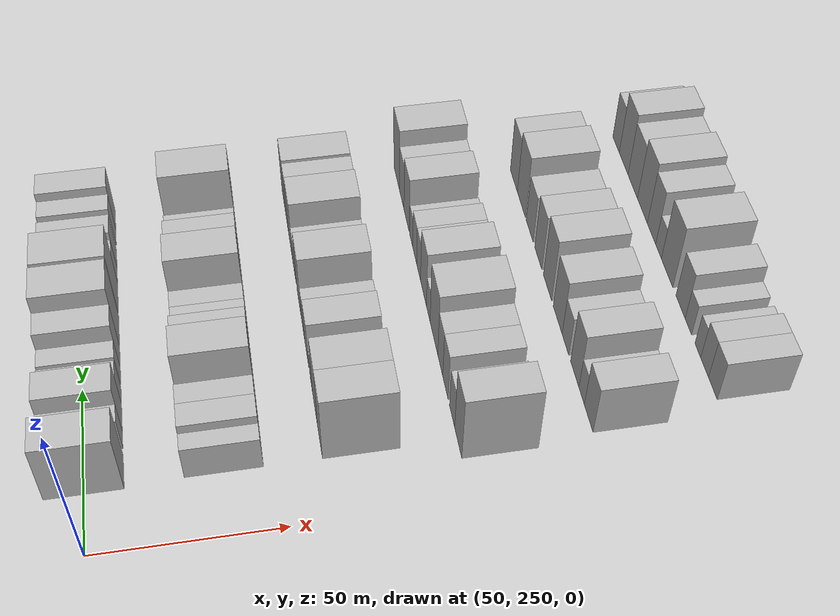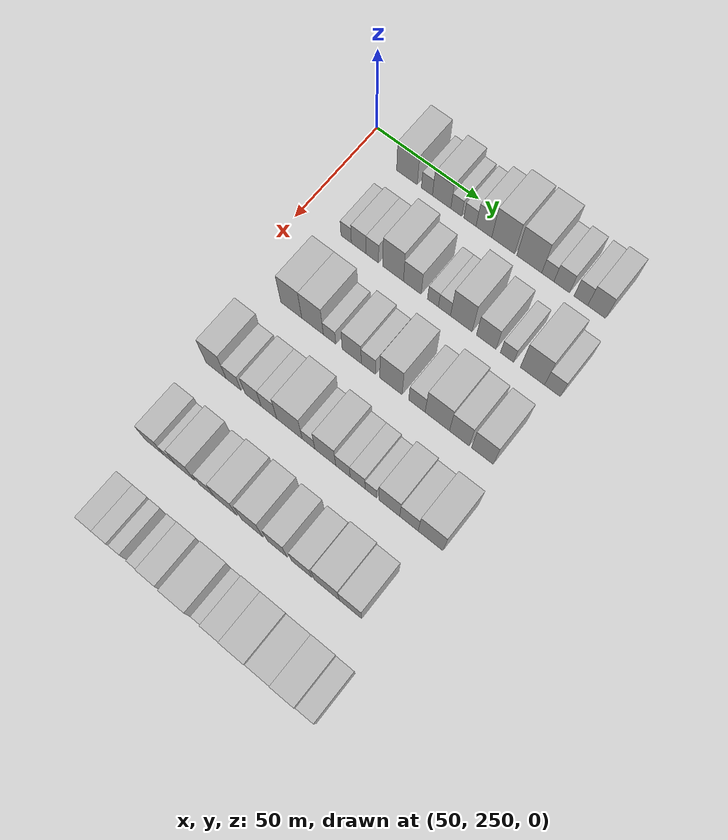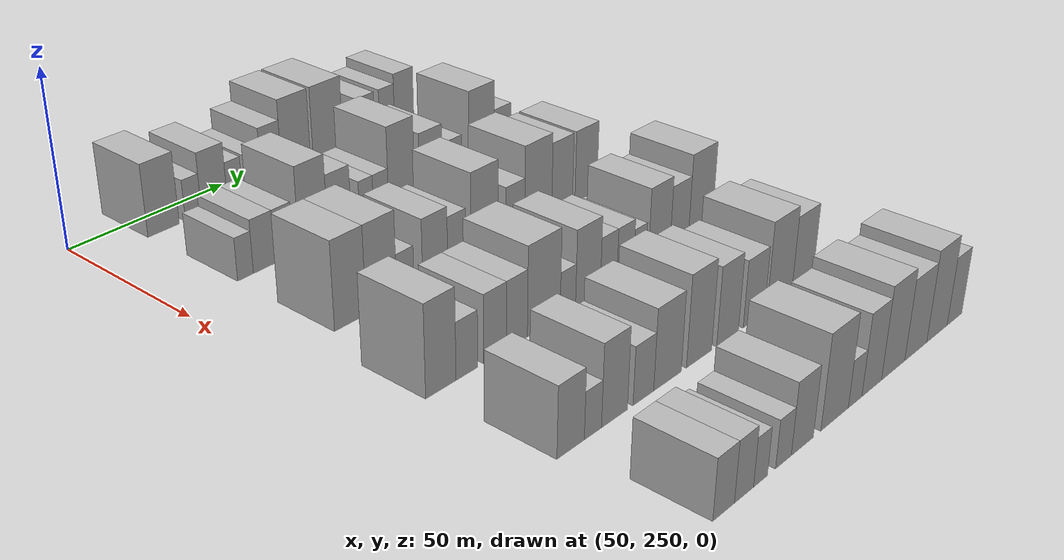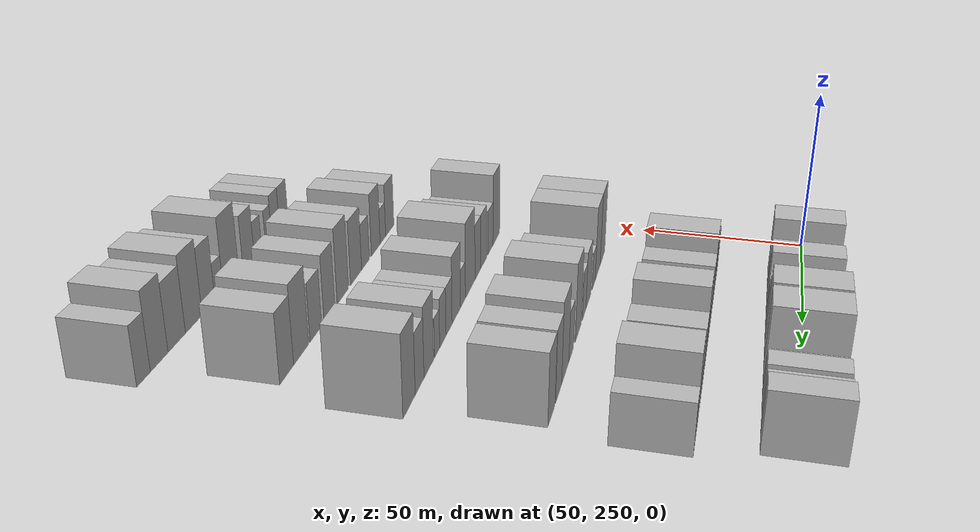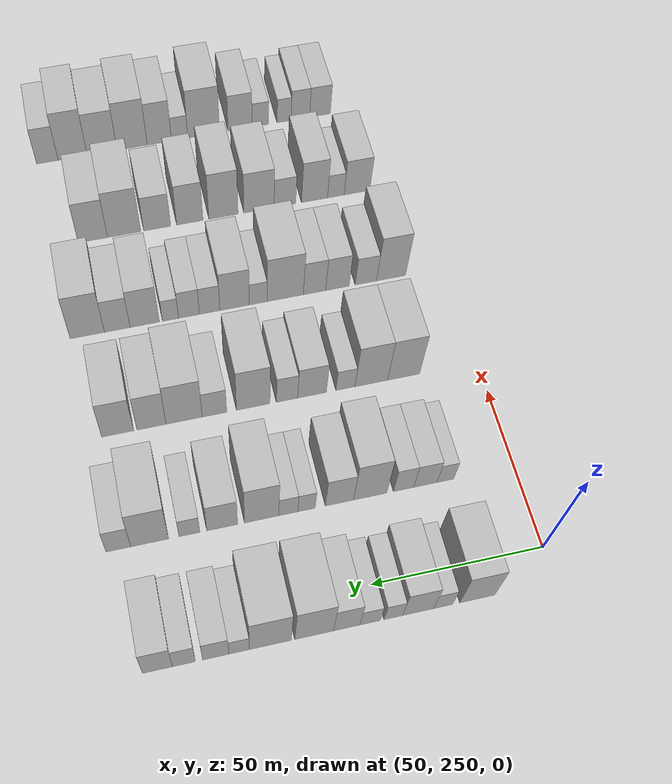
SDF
<sdf version="1.6">
 <world name="default">
  <model name="building_93">
   <static>1</static>
   <pose>50.0000 272.5630 0 0.000000 0.000000 0.000000</pose>
   <link name="link">
    <pose>0 0 10.50 0 0 0</pose>
    <collision name="collision"><geometry><box><size>20.0000 10.1299 21.0000</size></box></geometry></collision>
    <visual name="visual">
     <cast_shadows>0</cast_shadows>
     <geometry><box><size>20.0000 10.1299 21.0000</size></box></geometry>
     <material>
      <script>
       <uri>model://HANNAS_wall/materials/scripts</uri>
       <uri>model://HANNAS_wall/materials/textures</uri>
       <name>vrc/HANNAS_wall</name>
      </script>
     </material>
    </visual>
   </link>
  </model>
  <model name="building_94">
   <static>1</static>
   <pose>50.0000 282.3248 0 0.000000 0.000000 0.000000</pose>
   <link name="link">
    <pose>0 0 6.00 0 0 0</pose>
    <collision name="collision"><geometry><box><size>20.0000 5.3937 12.0000</size></box></geometry></collision>
    <visual name="visual">
     <cast_shadows>0</cast_shadows>
     <geometry><box><size>20.0000 5.3937 12.0000</size></box></geometry>
     <material>
      <script>
       <uri>model://HANNAS_wall/materials/scripts</uri>
       <uri>model://HANNAS_wall/materials/textures</uri>
       <name>vrc/HANNAS_wall</name>
      </script>
     </material>
    </visual>
   </link>
  </model>
  <model name="building_95">
   <static>1</static>
   <pose>50.0000 289.4388 0 0.000000 0.000000 0.000000</pose>
   <link name="link">
    <pose>0 0 9.00 0 0 0</pose>
    <collision name="collision"><geometry><box><size>20.0000 8.8343 18.0000</size></box></geometry></collision>
    <visual name="visual">
     <cast_shadows>0</cast_shadows>
     <geometry><box><size>20.0000 8.8343 18.0000</size></box></geometry>
     <material>
      <script>
       <uri>model://HANNAS_wall/materials/scripts</uri>
       <uri>model://HANNAS_wall/materials/textures</uri>
       <name>vrc/HANNAS_wall</name>
      </script>
     </material>
    </visual>
   </link>
  </model>
  <model name="building_96">
   <static>1</static>
   <pose>50.0000 296.4984 0 0.000000 0.000000 0.000000</pose>
   <link name="link">
    <pose>0 0 6.00 0 0 0</pose>
    <collision name="collision"><geometry><box><size>20.0000 5.2849 12.0000</size></box></geometry></collision>
    <visual name="visual">
     <cast_shadows>0</cast_shadows>
     <geometry><box><size>20.0000 5.2849 12.0000</size></box></geometry>
     <material>
      <script>
       <uri>model://HANNAS_wall/materials/scripts</uri>
       <uri>model://HANNAS_wall/materials/textures</uri>
       <name>vrc/HANNAS_wall</name>
      </script>
     </material>
    </visual>
   </link>
  </model>
  <model name="building_97">
   <static>1</static>
   <pose>50.0000 303.0328 0 0.000000 0.000000 0.000000</pose>
   <link name="link">
    <pose>0 0 6.00 0 0 0</pose>
    <collision name="collision"><geometry><box><size>20.0000 5.7839 12.0000</size></box></geometry></collision>
    <visual name="visual">
     <cast_shadows>0</cast_shadows>
     <geometry><box><size>20.0000 5.7839 12.0000</size></box></geometry>
     <material>
      <script>
       <uri>model://HANNAS_wall/materials/scripts</uri>
       <uri>model://HANNAS_wall/materials/textures</uri>
       <name>vrc/HANNAS_wall</name>
      </script>
     </material>
    </visual>
   </link>
  </model>
  <model name="building_98">
   <static>1</static>
   <pose>50.0000 309.6327 0 0.000000 0.000000 0.000000</pose>
   <link name="link">
    <pose>0 0 9.00 0 0 0</pose>
    <collision name="collision"><geometry><box><size>20.0000 7.4158 18.0000</size></box></geometry></collision>
    <visual name="visual">
     <cast_shadows>0</cast_shadows>
     <geometry><box><size>20.0000 7.4158 18.0000</size></box></geometry>
     <material>
      <script>
       <uri>model://HANNAS_wall/materials/scripts</uri>
       <uri>model://HANNAS_wall/materials/textures</uri>
       <name>vrc/HANNAS_wall</name>
      </script>
     </material>
    </visual>
   </link>
  </model>
  <model name="building_99">
   <static>1</static>
   <pose>50.0000 318.7072 0 0.000000 0.000000 0.000000</pose>
   <link name="link">
    <pose>0 0 12.00 0 0 0</pose>
    <collision name="collision"><geometry><box><size>20.0000 10.7334 24.0000</size></box></geometry></collision>
    <visual name="visual">
     <cast_shadows>0</cast_shadows>
     <geometry><box><size>20.0000 10.7334 24.0000</size></box></geometry>
     <material>
      <script>
       <uri>model://HANNAS_wall/materials/scripts</uri>
       <uri>model://HANNAS_wall/materials/textures</uri>
       <name>vrc/HANNAS_wall</name>
      </script>
     </material>
    </visual>
   </link>
  </model>
  <model name="building_100">
   <static>1</static>
   <pose>50.0000 330.8451 0 0.000000 0.000000 0.000000</pose>
   <link name="link">
    <pose>0 0 12.00 0 0 0</pose>
    <collision name="collision"><geometry><box><size>20.0000 11.5424 24.0000</size></box></geometry></collision>
    <visual name="visual">
     <cast_shadows>0</cast_shadows>
     <geometry><box><size>20.0000 11.5424 24.0000</size></box></geometry>
     <material>
      <script>
       <uri>model://HANNAS_wall/materials/scripts</uri>
       <uri>model://HANNAS_wall/materials/textures</uri>
       <name>vrc/HANNAS_wall</name>
      </script>
     </material>
    </visual>
   </link>
  </model>
  <model name="building_101">
   <static>1</static>
   <pose>50.0000 339.4170 0 0.000000 0.000000 0.000000</pose>
   <link name="link">
    <pose>0 0 6.00 0 0 0</pose>
    <collision name="collision"><geometry><box><size>20.0000 5.6013 12.0000</size></box></geometry></collision>
    <visual name="visual">
     <cast_shadows>0</cast_shadows>
     <geometry><box><size>20.0000 5.6013 12.0000</size></box></geometry>
     <material>
      <script>
       <uri>model://HANNAS_wall/materials/scripts</uri>
       <uri>model://HANNAS_wall/materials/textures</uri>
       <name>vrc/HANNAS_wall</name>
      </script>
     </material>
    </visual>
   </link>
  </model>
  <model name="building_102">
   <static>1</static>
   <pose>50.0000 345.7855 0 0.000000 0.000000 0.000000</pose>
   <link name="link">
    <pose>0 0 7.50 0 0 0</pose>
    <collision name="collision"><geometry><box><size>20.0000 7.1358 15.0000</size></box></geometry></collision>
    <visual name="visual">
     <cast_shadows>0</cast_shadows>
     <geometry><box><size>20.0000 7.1358 15.0000</size></box></geometry>
     <material>
      <script>
       <uri>model://HANNAS_wall/materials/scripts</uri>
       <uri>model://HANNAS_wall/materials/textures</uri>
       <name>vrc/HANNAS_wall</name>
      </script>
     </material>
    </visual>
   </link>
  </model>
  <model name="building_103">
   <static>1</static>
   <pose>50.0000 354.4414 0 0.000000 0.000000 0.000000</pose>
   <link name="link">
    <pose>0 0 7.50 0 0 0</pose>
    <collision name="collision"><geometry><box><size>20.0000 6.1759 15.0000</size></box></geometry></collision>
    <visual name="visual">
     <cast_shadows>0</cast_shadows>
     <geometry><box><size>20.0000 6.1759 15.0000</size></box></geometry>
     <material>
      <script>
       <uri>model://HANNAS_wall/materials/scripts</uri>
       <uri>model://HANNAS_wall/materials/textures</uri>
       <name>vrc/HANNAS_wall</name>
      </script>
     </material>
    </visual>
   </link>
  </model>
  <model name="building_104">
   <static>1</static>
   <pose>50.0000 361.5789 0 0.000000 0.000000 0.000000</pose>
   <link name="link">
    <pose>0 0 9.00 0 0 0</pose>
    <collision name="collision"><geometry><box><size>20.0000 8.0990 18.0000</size></box></geometry></collision>
    <visual name="visual">
     <cast_shadows>0</cast_shadows>
     <geometry><box><size>20.0000 8.0990 18.0000</size></box></geometry>
     <material>
      <script>
       <uri>model://HANNAS_wall/materials/scripts</uri>
       <uri>model://HANNAS_wall/materials/textures</uri>
       <name>vrc/HANNAS_wall</name>
      </script>
     </material>
    </visual>
   </link>
  </model>
  <model name="building_218">
   <static>1</static>
   <pose>85.0000 270.9491 0 0.000000 0.000000 0.000000</pose>
   <link name="link">
    <pose>0 0 6.00 0 0 0</pose>
    <collision name="collision"><geometry><box><size>20.0000 5.0546 12.0000</size></box></geometry></collision>
    <visual name="visual">
     <cast_shadows>0</cast_shadows>
     <geometry><box><size>20.0000 5.0546 12.0000</size></box></geometry>
     <material>
      <script>
       <uri>model://HANNAS_wall/materials/scripts</uri>
       <uri>model://HANNAS_wall/materials/textures</uri>
       <name>vrc/HANNAS_wall</name>
      </script>
     </material>
    </visual>
   </link>
  </model>
  <model name="building_219">
   <static>1</static>
   <pose>85.0000 276.9912 0 0.000000 0.000000 0.000000</pose>
   <link name="link">
    <pose>0 0 7.50 0 0 0</pose>
    <collision name="collision"><geometry><box><size>20.0000 7.0296 15.0000</size></box></geometry></collision>
    <visual name="visual">
     <cast_shadows>0</cast_shadows>
     <geometry><box><size>20.0000 7.0296 15.0000</size></box></geometry>
     <material>
      <script>
       <uri>model://HANNAS_wall/materials/scripts</uri>
       <uri>model://HANNAS_wall/materials/textures</uri>
       <name>vrc/HANNAS_wall</name>
      </script>
     </material>
    </visual>
   </link>
  </model>
  <model name="building_220">
   <static>1</static>
   <pose>85.0000 283.5441 0 0.000000 0.000000 0.000000</pose>
   <link name="link">
    <pose>0 0 7.50 0 0 0</pose>
    <collision name="collision"><geometry><box><size>20.0000 6.0762 15.0000</size></box></geometry></collision>
    <visual name="visual">
     <cast_shadows>0</cast_shadows>
     <geometry><box><size>20.0000 6.0762 15.0000</size></box></geometry>
     <material>
      <script>
       <uri>model://HANNAS_wall/materials/scripts</uri>
       <uri>model://HANNAS_wall/materials/textures</uri>
       <name>vrc/HANNAS_wall</name>
      </script>
     </material>
    </visual>
   </link>
  </model>
  <model name="building_221">
   <static>1</static>
   <pose>85.0000 293.5331 0 0.000000 0.000000 0.000000</pose>
   <link name="link">
    <pose>0 0 12.00 0 0 0</pose>
    <collision name="collision"><geometry><box><size>20.0000 9.9017 24.0000</size></box></geometry></collision>
    <visual name="visual">
     <cast_shadows>0</cast_shadows>
     <geometry><box><size>20.0000 9.9017 24.0000</size></box></geometry>
     <material>
      <script>
       <uri>model://HANNAS_wall/materials/scripts</uri>
       <uri>model://HANNAS_wall/materials/textures</uri>
       <name>vrc/HANNAS_wall</name>
      </script>
     </material>
    </visual>
   </link>
  </model>
  <model name="building_222">
   <static>1</static>
   <pose>85.0000 302.6558 0 0.000000 0.000000 0.000000</pose>
   <link name="link">
    <pose>0 0 9.00 0 0 0</pose>
    <collision name="collision"><geometry><box><size>20.0000 8.3438 18.0000</size></box></geometry></collision>
    <visual name="visual">
     <cast_shadows>0</cast_shadows>
     <geometry><box><size>20.0000 8.3438 18.0000</size></box></geometry>
     <material>
      <script>
       <uri>model://HANNAS_wall/materials/scripts</uri>
       <uri>model://HANNAS_wall/materials/textures</uri>
       <name>vrc/HANNAS_wall</name>
      </script>
     </material>
    </visual>
   </link>
  </model>
  <model name="building_223">
   <static>1</static>
   <pose>85.0000 312.3709 0 0.000000 0.000000 0.000000</pose>
   <link name="link">
    <pose>0 0 6.00 0 0 0</pose>
    <collision name="collision"><geometry><box><size>20.0000 5.0863 12.0000</size></box></geometry></collision>
    <visual name="visual">
     <cast_shadows>0</cast_shadows>
     <geometry><box><size>20.0000 5.0863 12.0000</size></box></geometry>
     <material>
      <script>
       <uri>model://HANNAS_wall/materials/scripts</uri>
       <uri>model://HANNAS_wall/materials/textures</uri>
       <name>vrc/HANNAS_wall</name>
      </script>
     </material>
    </visual>
   </link>
  </model>
  <model name="building_224">
   <static>1</static>
   <pose>85.0000 317.7336 0 0.000000 0.000000 0.000000</pose>
   <link name="link">
    <pose>0 0 6.00 0 0 0</pose>
    <collision name="collision"><geometry><box><size>20.0000 5.6390 12.0000</size></box></geometry></collision>
    <visual name="visual">
     <cast_shadows>0</cast_shadows>
     <geometry><box><size>20.0000 5.6390 12.0000</size></box></geometry>
     <material>
      <script>
       <uri>model://HANNAS_wall/materials/scripts</uri>
       <uri>model://HANNAS_wall/materials/textures</uri>
       <name>vrc/HANNAS_wall</name>
      </script>
     </material>
    </visual>
   </link>
  </model>
  <model name="building_225">
   <static>1</static>
   <pose>85.0000 325.5267 0 0.000000 0.000000 0.000000</pose>
   <link name="link">
    <pose>0 0 12.00 0 0 0</pose>
    <collision name="collision"><geometry><box><size>20.0000 9.9472 24.0000</size></box></geometry></collision>
    <visual name="visual">
     <cast_shadows>0</cast_shadows>
     <geometry><box><size>20.0000 9.9472 24.0000</size></box></geometry>
     <material>
      <script>
       <uri>model://HANNAS_wall/materials/scripts</uri>
       <uri>model://HANNAS_wall/materials/textures</uri>
       <name>vrc/HANNAS_wall</name>
      </script>
     </material>
    </visual>
   </link>
  </model>
  <model name="building_226">
   <static>1</static>
   <pose>85.0000 336.9498 0 0.000000 0.000000 0.000000</pose>
   <link name="link">
    <pose>0 0 9.00 0 0 0</pose>
    <collision name="collision"><geometry><box><size>20.0000 8.8991 18.0000</size></box></geometry></collision>
    <visual name="visual">
     <cast_shadows>0</cast_shadows>
     <geometry><box><size>20.0000 8.8991 18.0000</size></box></geometry>
     <material>
      <script>
       <uri>model://HANNAS_wall/materials/scripts</uri>
       <uri>model://HANNAS_wall/materials/textures</uri>
       <name>vrc/HANNAS_wall</name>
      </script>
     </material>
    </visual>
   </link>
  </model>
  <model name="building_227">
   <static>1</static>
   <pose>85.0000 346.3921 0 0.000000 0.000000 0.000000</pose>
   <link name="link">
    <pose>0 0 6.00 0 0 0</pose>
    <collision name="collision"><geometry><box><size>20.0000 5.9854 12.0000</size></box></geometry></collision>
    <visual name="visual">
     <cast_shadows>0</cast_shadows>
     <geometry><box><size>20.0000 5.9854 12.0000</size></box></geometry>
     <material>
      <script>
       <uri>model://HANNAS_wall/materials/scripts</uri>
       <uri>model://HANNAS_wall/materials/textures</uri>
       <name>vrc/HANNAS_wall</name>
      </script>
     </material>
    </visual>
   </link>
  </model>
  <model name="building_228">
   <static>1</static>
   <pose>85.0000 357.7683 0 0.000000 0.000000 0.000000</pose>
   <link name="link">
    <pose>0 0 12.00 0 0 0</pose>
    <collision name="collision"><geometry><box><size>20.0000 10.7670 24.0000</size></box></geometry></collision>
    <visual name="visual">
     <cast_shadows>0</cast_shadows>
     <geometry><box><size>20.0000 10.7670 24.0000</size></box></geometry>
     <material>
      <script>
       <uri>model://HANNAS_wall/materials/scripts</uri>
       <uri>model://HANNAS_wall/materials/textures</uri>
       <name>vrc/HANNAS_wall</name>
      </script>
     </material>
    </visual>
   </link>
  </model>
  <model name="building_229">
   <static>1</static>
   <pose>85.0000 366.6592 0 0.000000 0.000000 0.000000</pose>
   <link name="link">
    <pose>0 0 7.50 0 0 0</pose>
    <collision name="collision"><geometry><box><size>20.0000 7.0147 15.0000</size></box></geometry></collision>
    <visual name="visual">
     <cast_shadows>0</cast_shadows>
     <geometry><box><size>20.0000 7.0147 15.0000</size></box></geometry>
     <material>
      <script>
       <uri>model://HANNAS_wall/materials/scripts</uri>
       <uri>model://HANNAS_wall/materials/textures</uri>
       <name>vrc/HANNAS_wall</name>
      </script>
     </material>
    </visual>
   </link>
  </model>
  <model name="building_349">
   <static>1</static>
   <pose>120.0000 273.4617 0 0.000000 0.000000 0.000000</pose>
   <link name="link">
    <pose>0 0 12.00 0 0 0</pose>
    <collision name="collision"><geometry><box><size>20.0000 10.1039 24.0000</size></box></geometry></collision>
    <visual name="visual">
     <cast_shadows>0</cast_shadows>
     <geometry><box><size>20.0000 10.1039 24.0000</size></box></geometry>
     <material>
      <script>
       <uri>model://HANNAS_wall/materials/scripts</uri>
       <uri>model://HANNAS_wall/materials/textures</uri>
       <name>vrc/HANNAS_wall</name>
      </script>
     </material>
    </visual>
   </link>
  </model>
  <model name="building_350">
   <static>1</static>
   <pose>120.0000 283.6607 0 0.000000 0.000000 0.000000</pose>
   <link name="link">
    <pose>0 0 12.00 0 0 0</pose>
    <collision name="collision"><geometry><box><size>20.0000 10.2941 24.0000</size></box></geometry></collision>
    <visual name="visual">
     <cast_shadows>0</cast_shadows>
     <geometry><box><size>20.0000 10.2941 24.0000</size></box></geometry>
     <material>
      <script>
       <uri>model://HANNAS_wall/materials/scripts</uri>
       <uri>model://HANNAS_wall/materials/textures</uri>
       <name>vrc/HANNAS_wall</name>
      </script>
     </material>
    </visual>
   </link>
  </model>
  <model name="building_351">
   <static>1</static>
   <pose>120.0000 291.7783 0 0.000000 0.000000 0.000000</pose>
   <link name="link">
    <pose>0 0 6.00 0 0 0</pose>
    <collision name="collision"><geometry><box><size>20.0000 5.9409 12.0000</size></box></geometry></collision>
    <visual name="visual">
     <cast_shadows>0</cast_shadows>
     <geometry><box><size>20.0000 5.9409 12.0000</size></box></geometry>
     <material>
      <script>
       <uri>model://HANNAS_wall/materials/scripts</uri>
       <uri>model://HANNAS_wall/materials/textures</uri>
       <name>vrc/HANNAS_wall</name>
      </script>
     </material>
    </visual>
   </link>
  </model>
  <model name="building_352">
   <static>1</static>
   <pose>120.0000 302.2097 0 0.000000 0.000000 0.000000</pose>
   <link name="link">
    <pose>0 0 9.00 0 0 0</pose>
    <collision name="collision"><geometry><box><size>20.0000 8.9220 18.0000</size></box></geometry></collision>
    <visual name="visual">
     <cast_shadows>0</cast_shadows>
     <geometry><box><size>20.0000 8.9220 18.0000</size></box></geometry>
     <material>
      <script>
       <uri>model://HANNAS_wall/materials/scripts</uri>
       <uri>model://HANNAS_wall/materials/textures</uri>
       <name>vrc/HANNAS_wall</name>
      </script>
     </material>
    </visual>
   </link>
  </model>
  <model name="building_353">
   <static>1</static>
   <pose>120.0000 309.9529 0 0.000000 0.000000 0.000000</pose>
   <link name="link">
    <pose>0 0 7.50 0 0 0</pose>
    <collision name="collision"><geometry><box><size>20.0000 6.5644 15.0000</size></box></geometry></collision>
    <visual name="visual">
     <cast_shadows>0</cast_shadows>
     <geometry><box><size>20.0000 6.5644 15.0000</size></box></geometry>
     <material>
      <script>
       <uri>model://HANNAS_wall/materials/scripts</uri>
       <uri>model://HANNAS_wall/materials/textures</uri>
       <name>vrc/HANNAS_wall</name>
      </script>
     </material>
    </visual>
   </link>
  </model>
  <model name="building_354">
   <static>1</static>
   <pose>120.0000 320.3714 0 0.000000 0.000000 0.000000</pose>
   <link name="link">
    <pose>0 0 12.00 0 0 0</pose>
    <collision name="collision"><geometry><box><size>20.0000 10.2726 24.0000</size></box></geometry></collision>
    <visual name="visual">
     <cast_shadows>0</cast_shadows>
     <geometry><box><size>20.0000 10.2726 24.0000</size></box></geometry>
     <material>
      <script>
       <uri>model://HANNAS_wall/materials/scripts</uri>
       <uri>model://HANNAS_wall/materials/textures</uri>
       <name>vrc/HANNAS_wall</name>
      </script>
     </material>
    </visual>
   </link>
  </model>
  <model name="building_355">
   <static>1</static>
   <pose>120.0000 332.2340 0 0.000000 0.000000 0.000000</pose>
   <link name="link">
    <pose>0 0 7.50 0 0 0</pose>
    <collision name="collision"><geometry><box><size>20.0000 7.4526 15.0000</size></box></geometry></collision>
    <visual name="visual">
     <cast_shadows>0</cast_shadows>
     <geometry><box><size>20.0000 7.4526 15.0000</size></box></geometry>
     <material>
      <script>
       <uri>model://HANNAS_wall/materials/scripts</uri>
       <uri>model://HANNAS_wall/materials/textures</uri>
       <name>vrc/HANNAS_wall</name>
      </script>
     </material>
    </visual>
   </link>
  </model>
  <model name="building_356">
   <static>1</static>
   <pose>120.0000 341.4421 0 0.000000 0.000000 0.000000</pose>
   <link name="link">
    <pose>0 0 12.00 0 0 0</pose>
    <collision name="collision"><geometry><box><size>20.0000 10.9636 24.0000</size></box></geometry></collision>
    <visual name="visual">
     <cast_shadows>0</cast_shadows>
     <geometry><box><size>20.0000 10.9636 24.0000</size></box></geometry>
     <material>
      <script>
       <uri>model://HANNAS_wall/materials/scripts</uri>
       <uri>model://HANNAS_wall/materials/textures</uri>
       <name>vrc/HANNAS_wall</name>
      </script>
     </material>
    </visual>
   </link>
  </model>
  <model name="building_357">
   <static>1</static>
   <pose>120.0000 351.2970 0 0.000000 0.000000 0.000000</pose>
   <link name="link">
    <pose>0 0 10.50 0 0 0</pose>
    <collision name="collision"><geometry><box><size>20.0000 8.7463 21.0000</size></box></geometry></collision>
    <visual name="visual">
     <cast_shadows>0</cast_shadows>
     <geometry><box><size>20.0000 8.7463 21.0000</size></box></geometry>
     <material>
      <script>
       <uri>model://HANNAS_wall/materials/scripts</uri>
       <uri>model://HANNAS_wall/materials/textures</uri>
       <name>vrc/HANNAS_wall</name>
      </script>
     </material>
    </visual>
   </link>
  </model>
  <model name="building_358">
   <static>1</static>
   <pose>120.0000 361.4625 0 0.000000 0.000000 0.000000</pose>
   <link name="link">
    <pose>0 0 10.50 0 0 0</pose>
    <collision name="collision"><geometry><box><size>20.0000 9.5847 21.0000</size></box></geometry></collision>
    <visual name="visual">
     <cast_shadows>0</cast_shadows>
     <geometry><box><size>20.0000 9.5847 21.0000</size></box></geometry>
     <material>
      <script>
       <uri>model://HANNAS_wall/materials/scripts</uri>
       <uri>model://HANNAS_wall/materials/textures</uri>
       <name>vrc/HANNAS_wall</name>
      </script>
     </material>
    </visual>
   </link>
  </model>
  <model name="building_475">
   <static>1</static>
   <pose>155.0000 267.5952 0 0.000000 0.000000 0.000000</pose>
   <link name="link">
    <pose>0 0 12.00 0 0 0</pose>
    <collision name="collision"><geometry><box><size>20.0000 9.6305 24.0000</size></box></geometry></collision>
    <visual name="visual">
     <cast_shadows>0</cast_shadows>
     <geometry><box><size>20.0000 9.6305 24.0000</size></box></geometry>
     <material>
      <script>
       <uri>model://HANNAS_wall/materials/scripts</uri>
       <uri>model://HANNAS_wall/materials/textures</uri>
       <name>vrc/HANNAS_wall</name>
      </script>
     </material>
    </visual>
   </link>
  </model>
  <model name="building_476">
   <static>1</static>
   <pose>155.0000 275.9416 0 0.000000 0.000000 0.000000</pose>
   <link name="link">
    <pose>0 0 7.50 0 0 0</pose>
    <collision name="collision"><geometry><box><size>20.0000 7.0623 15.0000</size></box></geometry></collision>
    <visual name="visual">
     <cast_shadows>0</cast_shadows>
     <geometry><box><size>20.0000 7.0623 15.0000</size></box></geometry>
     <material>
      <script>
       <uri>model://HANNAS_wall/materials/scripts</uri>
       <uri>model://HANNAS_wall/materials/textures</uri>
       <name>vrc/HANNAS_wall</name>
      </script>
     </material>
    </visual>
   </link>
  </model>
  <model name="building_477">
   <static>1</static>
   <pose>155.0000 285.3230 0 0.000000 0.000000 0.000000</pose>
   <link name="link">
    <pose>0 0 9.00 0 0 0</pose>
    <collision name="collision"><geometry><box><size>20.0000 7.7006 18.0000</size></box></geometry></collision>
    <visual name="visual">
     <cast_shadows>0</cast_shadows>
     <geometry><box><size>20.0000 7.7006 18.0000</size></box></geometry>
     <material>
      <script>
       <uri>model://HANNAS_wall/materials/scripts</uri>
       <uri>model://HANNAS_wall/materials/textures</uri>
       <name>vrc/HANNAS_wall</name>
      </script>
     </material>
    </visual>
   </link>
  </model>
  <model name="building_478">
   <static>1</static>
   <pose>155.0000 292.8248 0 0.000000 0.000000 0.000000</pose>
   <link name="link">
    <pose>0 0 9.00 0 0 0</pose>
    <collision name="collision"><geometry><box><size>20.0000 7.3030 18.0000</size></box></geometry></collision>
    <visual name="visual">
     <cast_shadows>0</cast_shadows>
     <geometry><box><size>20.0000 7.3030 18.0000</size></box></geometry>
     <material>
      <script>
       <uri>model://HANNAS_wall/materials/scripts</uri>
       <uri>model://HANNAS_wall/materials/textures</uri>
       <name>vrc/HANNAS_wall</name>
      </script>
     </material>
    </visual>
   </link>
  </model>
  <model name="building_479">
   <static>1</static>
   <pose>155.0000 302.3941 0 0.000000 0.000000 0.000000</pose>
   <link name="link">
    <pose>0 0 12.00 0 0 0</pose>
    <collision name="collision"><geometry><box><size>20.0000 11.8357 24.0000</size></box></geometry></collision>
    <visual name="visual">
     <cast_shadows>0</cast_shadows>
     <geometry><box><size>20.0000 11.8357 24.0000</size></box></geometry>
     <material>
      <script>
       <uri>model://HANNAS_wall/materials/scripts</uri>
       <uri>model://HANNAS_wall/materials/textures</uri>
       <name>vrc/HANNAS_wall</name>
      </script>
     </material>
    </visual>
   </link>
  </model>
  <model name="building_480">
   <static>1</static>
   <pose>155.0000 311.1823 0 0.000000 0.000000 0.000000</pose>
   <link name="link">
    <pose>0 0 6.00 0 0 0</pose>
    <collision name="collision"><geometry><box><size>20.0000 5.7406 12.0000</size></box></geometry></collision>
    <visual name="visual">
     <cast_shadows>0</cast_shadows>
     <geometry><box><size>20.0000 5.7406 12.0000</size></box></geometry>
     <material>
      <script>
       <uri>model://HANNAS_wall/materials/scripts</uri>
       <uri>model://HANNAS_wall/materials/textures</uri>
       <name>vrc/HANNAS_wall</name>
      </script>
     </material>
    </visual>
   </link>
  </model>
  <model name="building_481">
   <static>1</static>
   <pose>155.0000 318.7968 0 0.000000 0.000000 0.000000</pose>
   <link name="link">
    <pose>0 0 10.50 0 0 0</pose>
    <collision name="collision"><geometry><box><size>20.0000 9.4885 21.0000</size></box></geometry></collision>
    <visual name="visual">
     <cast_shadows>0</cast_shadows>
     <geometry><box><size>20.0000 9.4885 21.0000</size></box></geometry>
     <material>
      <script>
       <uri>model://HANNAS_wall/materials/scripts</uri>
       <uri>model://HANNAS_wall/materials/textures</uri>
       <name>vrc/HANNAS_wall</name>
      </script>
     </material>
    </visual>
   </link>
  </model>
  <model name="building_482">
   <static>1</static>
   <pose>155.0000 326.8079 0 0.000000 0.000000 0.000000</pose>
   <link name="link">
    <pose>0 0 7.50 0 0 0</pose>
    <collision name="collision"><geometry><box><size>20.0000 6.5336 15.0000</size></box></geometry></collision>
    <visual name="visual">
     <cast_shadows>0</cast_shadows>
     <geometry><box><size>20.0000 6.5336 15.0000</size></box></geometry>
     <material>
      <script>
       <uri>model://HANNAS_wall/materials/scripts</uri>
       <uri>model://HANNAS_wall/materials/textures</uri>
       <name>vrc/HANNAS_wall</name>
      </script>
     </material>
    </visual>
   </link>
  </model>
  <model name="building_483">
   <static>1</static>
   <pose>155.0000 333.4215 0 0.000000 0.000000 0.000000</pose>
   <link name="link">
    <pose>0 0 7.50 0 0 0</pose>
    <collision name="collision"><geometry><box><size>20.0000 6.6936 15.0000</size></box></geometry></collision>
    <visual name="visual">
     <cast_shadows>0</cast_shadows>
     <geometry><box><size>20.0000 6.6936 15.0000</size></box></geometry>
     <material>
      <script>
       <uri>model://HANNAS_wall/materials/scripts</uri>
       <uri>model://HANNAS_wall/materials/textures</uri>
       <name>vrc/HANNAS_wall</name>
      </script>
     </material>
    </visual>
   </link>
  </model>
  <model name="building_484">
   <static>1</static>
   <pose>155.0000 339.3226 0 0.000000 0.000000 0.000000</pose>
   <link name="link">
    <pose>0 0 6.00 0 0 0</pose>
    <collision name="collision"><geometry><box><size>20.0000 5.1086 12.0000</size></box></geometry></collision>
    <visual name="visual">
     <cast_shadows>0</cast_shadows>
     <geometry><box><size>20.0000 5.1086 12.0000</size></box></geometry>
     <material>
      <script>
       <uri>model://HANNAS_wall/materials/scripts</uri>
       <uri>model://HANNAS_wall/materials/textures</uri>
       <name>vrc/HANNAS_wall</name>
      </script>
     </material>
    </visual>
   </link>
  </model>
  <model name="building_485">
   <static>1</static>
   <pose>155.0000 347.5024 0 0.000000 0.000000 0.000000</pose>
   <link name="link">
    <pose>0 0 10.50 0 0 0</pose>
    <collision name="collision"><geometry><box><size>20.0000 9.2510 21.0000</size></box></geometry></collision>
    <visual name="visual">
     <cast_shadows>0</cast_shadows>
     <geometry><box><size>20.0000 9.2510 21.0000</size></box></geometry>
     <material>
      <script>
       <uri>model://HANNAS_wall/materials/scripts</uri>
       <uri>model://HANNAS_wall/materials/textures</uri>
       <name>vrc/HANNAS_wall</name>
      </script>
     </material>
    </visual>
   </link>
  </model>
  <model name="building_486">
   <static>1</static>
   <pose>155.0000 356.1687 0 0.000000 0.000000 0.000000</pose>
   <link name="link">
    <pose>0 0 9.00 0 0 0</pose>
    <collision name="collision"><geometry><box><size>20.0000 8.0815 18.0000</size></box></geometry></collision>
    <visual name="visual">
     <cast_shadows>0</cast_shadows>
     <geometry><box><size>20.0000 8.0815 18.0000</size></box></geometry>
     <material>
      <script>
       <uri>model://HANNAS_wall/materials/scripts</uri>
       <uri>model://HANNAS_wall/materials/textures</uri>
       <name>vrc/HANNAS_wall</name>
      </script>
     </material>
    </visual>
   </link>
  </model>
  <model name="building_487">
   <static>1</static>
   <pose>155.0000 365.5808 0 0.000000 0.000000 0.000000</pose>
   <link name="link">
    <pose>0 0 12.00 0 0 0</pose>
    <collision name="collision"><geometry><box><size>20.0000 10.7426 24.0000</size></box></geometry></collision>
    <visual name="visual">
     <cast_shadows>0</cast_shadows>
     <geometry><box><size>20.0000 10.7426 24.0000</size></box></geometry>
     <material>
      <script>
       <uri>model://HANNAS_wall/materials/scripts</uri>
       <uri>model://HANNAS_wall/materials/textures</uri>
       <name>vrc/HANNAS_wall</name>
      </script>
     </material>
    </visual>
   </link>
  </model>
  <model name="building_602">
   <static>1</static>
   <pose>190.0000 269.5922 0 0.000000 0.000000 0.000000</pose>
   <link name="link">
    <pose>0 0 9.00 0 0 0</pose>
    <collision name="collision"><geometry><box><size>20.0000 8.9007 18.0000</size></box></geometry></collision>
    <visual name="visual">
     <cast_shadows>0</cast_shadows>
     <geometry><box><size>20.0000 8.9007 18.0000</size></box></geometry>
     <material>
      <script>
       <uri>model://HANNAS_wall/materials/scripts</uri>
       <uri>model://HANNAS_wall/materials/textures</uri>
       <name>vrc/HANNAS_wall</name>
      </script>
     </material>
    </visual>
   </link>
  </model>
  <model name="building_603">
   <static>1</static>
   <pose>190.0000 276.9103 0 0.000000 0.000000 0.000000</pose>
   <link name="link">
    <pose>0 0 6.00 0 0 0</pose>
    <collision name="collision"><geometry><box><size>20.0000 5.7354 12.0000</size></box></geometry></collision>
    <visual name="visual">
     <cast_shadows>0</cast_shadows>
     <geometry><box><size>20.0000 5.7354 12.0000</size></box></geometry>
     <material>
      <script>
       <uri>model://HANNAS_wall/materials/scripts</uri>
       <uri>model://HANNAS_wall/materials/textures</uri>
       <name>vrc/HANNAS_wall</name>
      </script>
     </material>
    </visual>
   </link>
  </model>
  <model name="building_604">
   <static>1</static>
   <pose>190.0000 284.2447 0 0.000000 0.000000 0.000000</pose>
   <link name="link">
    <pose>0 0 10.50 0 0 0</pose>
    <collision name="collision"><geometry><box><size>20.0000 8.9334 21.0000</size></box></geometry></collision>
    <visual name="visual">
     <cast_shadows>0</cast_shadows>
     <geometry><box><size>20.0000 8.9334 21.0000</size></box></geometry>
     <material>
      <script>
       <uri>model://HANNAS_wall/materials/scripts</uri>
       <uri>model://HANNAS_wall/materials/textures</uri>
       <name>vrc/HANNAS_wall</name>
      </script>
     </material>
    </visual>
   </link>
  </model>
  <model name="building_605">
   <static>1</static>
   <pose>190.0000 294.4179 0 0.000000 0.000000 0.000000</pose>
   <link name="link">
    <pose>0 0 7.50 0 0 0</pose>
    <collision name="collision"><geometry><box><size>20.0000 7.4130 15.0000</size></box></geometry></collision>
    <visual name="visual">
     <cast_shadows>0</cast_shadows>
     <geometry><box><size>20.0000 7.4130 15.0000</size></box></geometry>
     <material>
      <script>
       <uri>model://HANNAS_wall/materials/scripts</uri>
       <uri>model://HANNAS_wall/materials/textures</uri>
       <name>vrc/HANNAS_wall</name>
      </script>
     </material>
    </visual>
   </link>
  </model>
  <model name="building_606">
   <static>1</static>
   <pose>190.0000 303.2403 0 0.000000 0.000000 0.000000</pose>
   <link name="link">
    <pose>0 0 10.50 0 0 0</pose>
    <collision name="collision"><geometry><box><size>20.0000 10.2319 21.0000</size></box></geometry></collision>
    <visual name="visual">
     <cast_shadows>0</cast_shadows>
     <geometry><box><size>20.0000 10.2319 21.0000</size></box></geometry>
     <material>
      <script>
       <uri>model://HANNAS_wall/materials/scripts</uri>
       <uri>model://HANNAS_wall/materials/textures</uri>
       <name>vrc/HANNAS_wall</name>
      </script>
     </material>
    </visual>
   </link>
  </model>
  <model name="building_607">
   <static>1</static>
   <pose>190.0000 315.2673 0 0.000000 0.000000 0.000000</pose>
   <link name="link">
    <pose>0 0 12.00 0 0 0</pose>
    <collision name="collision"><geometry><box><size>20.0000 9.8221 24.0000</size></box></geometry></collision>
    <visual name="visual">
     <cast_shadows>0</cast_shadows>
     <geometry><box><size>20.0000 9.8221 24.0000</size></box></geometry>
     <material>
      <script>
       <uri>model://HANNAS_wall/materials/scripts</uri>
       <uri>model://HANNAS_wall/materials/textures</uri>
       <name>vrc/HANNAS_wall</name>
      </script>
     </material>
    </visual>
   </link>
  </model>
  <model name="building_608">
   <static>1</static>
   <pose>190.0000 326.5966 0 0.000000 0.000000 0.000000</pose>
   <link name="link">
    <pose>0 0 10.50 0 0 0</pose>
    <collision name="collision"><geometry><box><size>20.0000 8.8366 21.0000</size></box></geometry></collision>
    <visual name="visual">
     <cast_shadows>0</cast_shadows>
     <geometry><box><size>20.0000 8.8366 21.0000</size></box></geometry>
     <material>
      <script>
       <uri>model://HANNAS_wall/materials/scripts</uri>
       <uri>model://HANNAS_wall/materials/textures</uri>
       <name>vrc/HANNAS_wall</name>
      </script>
     </material>
    </visual>
   </link>
  </model>
  <model name="building_609">
   <static>1</static>
   <pose>190.0000 337.5046 0 0.000000 0.000000 0.000000</pose>
   <link name="link">
    <pose>0 0 9.00 0 0 0</pose>
    <collision name="collision"><geometry><box><size>20.0000 8.9793 18.0000</size></box></geometry></collision>
    <visual name="visual">
     <cast_shadows>0</cast_shadows>
     <geometry><box><size>20.0000 8.9793 18.0000</size></box></geometry>
     <material>
      <script>
       <uri>model://HANNAS_wall/materials/scripts</uri>
       <uri>model://HANNAS_wall/materials/textures</uri>
       <name>vrc/HANNAS_wall</name>
      </script>
     </material>
    </visual>
   </link>
  </model>
  <model name="building_610">
   <static>1</static>
   <pose>190.0000 348.4881 0 0.000000 0.000000 0.000000</pose>
   <link name="link">
    <pose>0 0 12.00 0 0 0</pose>
    <collision name="collision"><geometry><box><size>20.0000 10.9876 24.0000</size></box></geometry></collision>
    <visual name="visual">
     <cast_shadows>0</cast_shadows>
     <geometry><box><size>20.0000 10.9876 24.0000</size></box></geometry>
     <material>
      <script>
       <uri>model://HANNAS_wall/materials/scripts</uri>
       <uri>model://HANNAS_wall/materials/textures</uri>
       <name>vrc/HANNAS_wall</name>
      </script>
     </material>
    </visual>
   </link>
  </model>
  <model name="building_611">
   <static>1</static>
   <pose>190.0000 358.8133 0 0.000000 0.000000 0.000000</pose>
   <link name="link">
    <pose>0 0 10.50 0 0 0</pose>
    <collision name="collision"><geometry><box><size>20.0000 9.6628 21.0000</size></box></geometry></collision>
    <visual name="visual">
     <cast_shadows>0</cast_shadows>
     <geometry><box><size>20.0000 9.6628 21.0000</size></box></geometry>
     <material>
      <script>
       <uri>model://HANNAS_wall/materials/scripts</uri>
       <uri>model://HANNAS_wall/materials/textures</uri>
       <name>vrc/HANNAS_wall</name>
      </script>
     </material>
    </visual>
   </link>
  </model>
  <model name="building_727">
   <static>1</static>
   <pose>225.0000 273.6990 0 0.000000 0.000000 0.000000</pose>
   <link name="link">
    <pose>0 0 7.50 0 0 0</pose>
    <collision name="collision"><geometry><box><size>20.0000 7.4072 15.0000</size></box></geometry></collision>
    <visual name="visual">
     <cast_shadows>0</cast_shadows>
     <geometry><box><size>20.0000 7.4072 15.0000</size></box></geometry>
     <material>
      <script>
       <uri>model://HANNAS_wall/materials/scripts</uri>
       <uri>model://HANNAS_wall/materials/textures</uri>
       <name>vrc/HANNAS_wall</name>
      </script>
     </material>
    </visual>
   </link>
  </model>
  <model name="building_728">
   <static>1</static>
   <pose>225.0000 280.7531 0 0.000000 0.000000 0.000000</pose>
   <link name="link">
    <pose>0 0 7.50 0 0 0</pose>
    <collision name="collision"><geometry><box><size>20.0000 6.7011 15.0000</size></box></geometry></collision>
    <visual name="visual">
     <cast_shadows>0</cast_shadows>
     <geometry><box><size>20.0000 6.7011 15.0000</size></box></geometry>
     <material>
      <script>
       <uri>model://HANNAS_wall/materials/scripts</uri>
       <uri>model://HANNAS_wall/materials/textures</uri>
       <name>vrc/HANNAS_wall</name>
      </script>
     </material>
    </visual>
   </link>
  </model>
  <model name="building_729">
   <static>1</static>
   <pose>225.0000 286.6221 0 0.000000 0.000000 0.000000</pose>
   <link name="link">
    <pose>0 0 6.00 0 0 0</pose>
    <collision name="collision"><geometry><box><size>20.0000 5.0369 12.0000</size></box></geometry></collision>
    <visual name="visual">
     <cast_shadows>0</cast_shadows>
     <geometry><box><size>20.0000 5.0369 12.0000</size></box></geometry>
     <material>
      <script>
       <uri>model://HANNAS_wall/materials/scripts</uri>
       <uri>model://HANNAS_wall/materials/textures</uri>
       <name>vrc/HANNAS_wall</name>
      </script>
     </material>
    </visual>
   </link>
  </model>
  <model name="building_730">
   <static>1</static>
   <pose>225.0000 295.0849 0 0.000000 0.000000 0.000000</pose>
   <link name="link">
    <pose>0 0 6.00 0 0 0</pose>
    <collision name="collision"><geometry><box><size>20.0000 5.8887 12.0000</size></box></geometry></collision>
    <visual name="visual">
     <cast_shadows>0</cast_shadows>
     <geometry><box><size>20.0000 5.8887 12.0000</size></box></geometry>
     <material>
      <script>
       <uri>model://HANNAS_wall/materials/scripts</uri>
       <uri>model://HANNAS_wall/materials/textures</uri>
       <name>vrc/HANNAS_wall</name>
      </script>
     </material>
    </visual>
   </link>
  </model>
  <model name="building_731">
   <static>1</static>
   <pose>225.0000 302.2816 0 0.000000 0.000000 0.000000</pose>
   <link name="link">
    <pose>0 0 9.00 0 0 0</pose>
    <collision name="collision"><geometry><box><size>20.0000 8.5046 18.0000</size></box></geometry></collision>
    <visual name="visual">
     <cast_shadows>0</cast_shadows>
     <geometry><box><size>20.0000 8.5046 18.0000</size></box></geometry>
     <material>
      <script>
       <uri>model://HANNAS_wall/materials/scripts</uri>
       <uri>model://HANNAS_wall/materials/textures</uri>
       <name>vrc/HANNAS_wall</name>
      </script>
     </material>
    </visual>
   </link>
  </model>
  <model name="building_732">
   <static>1</static>
   <pose>225.0000 315.1303 0 0.000000 0.000000 0.000000</pose>
   <link name="link">
    <pose>0 0 12.00 0 0 0</pose>
    <collision name="collision"><geometry><box><size>20.0000 11.1929 24.0000</size></box></geometry></collision>
    <visual name="visual">
     <cast_shadows>0</cast_shadows>
     <geometry><box><size>20.0000 11.1929 24.0000</size></box></geometry>
     <material>
      <script>
       <uri>model://HANNAS_wall/materials/scripts</uri>
       <uri>model://HANNAS_wall/materials/textures</uri>
       <name>vrc/HANNAS_wall</name>
      </script>
     </material>
    </visual>
   </link>
  </model>
  <model name="building_733">
   <static>1</static>
   <pose>225.0000 323.5892 0 0.000000 0.000000 0.000000</pose>
   <link name="link">
    <pose>0 0 6.00 0 0 0</pose>
    <collision name="collision"><geometry><box><size>20.0000 5.7249 12.0000</size></box></geometry></collision>
    <visual name="visual">
     <cast_shadows>0</cast_shadows>
     <geometry><box><size>20.0000 5.7249 12.0000</size></box></geometry>
     <material>
      <script>
       <uri>model://HANNAS_wall/materials/scripts</uri>
       <uri>model://HANNAS_wall/materials/textures</uri>
       <name>vrc/HANNAS_wall</name>
      </script>
     </material>
    </visual>
   </link>
  </model>
  <model name="building_734">
   <static>1</static>
   <pose>225.0000 330.6960 0 0.000000 0.000000 0.000000</pose>
   <link name="link">
    <pose>0 0 10.50 0 0 0</pose>
    <collision name="collision"><geometry><box><size>20.0000 8.4887 21.0000</size></box></geometry></collision>
    <visual name="visual">
     <cast_shadows>0</cast_shadows>
     <geometry><box><size>20.0000 8.4887 21.0000</size></box></geometry>
     <material>
      <script>
       <uri>model://HANNAS_wall/materials/scripts</uri>
       <uri>model://HANNAS_wall/materials/textures</uri>
       <name>vrc/HANNAS_wall</name>
      </script>
     </material>
    </visual>
   </link>
  </model>
  <model name="building_735">
   <static>1</static>
   <pose>225.0000 340.1885 0 0.000000 0.000000 0.000000</pose>
   <link name="link">
    <pose>0 0 12.00 0 0 0</pose>
    <collision name="collision"><geometry><box><size>20.0000 10.4963 24.0000</size></box></geometry></collision>
    <visual name="visual">
     <cast_shadows>0</cast_shadows>
     <geometry><box><size>20.0000 10.4963 24.0000</size></box></geometry>
     <material>
      <script>
       <uri>model://HANNAS_wall/materials/scripts</uri>
       <uri>model://HANNAS_wall/materials/textures</uri>
       <name>vrc/HANNAS_wall</name>
      </script>
     </material>
    </visual>
   </link>
  </model>
  <model name="building_736">
   <static>1</static>
   <pose>225.0000 350.5989 0 0.000000 0.000000 0.000000</pose>
   <link name="link">
    <pose>0 0 10.50 0 0 0</pose>
    <collision name="collision"><geometry><box><size>20.0000 10.3245 21.0000</size></box></geometry></collision>
    <visual name="visual">
     <cast_shadows>0</cast_shadows>
     <geometry><box><size>20.0000 10.3245 21.0000</size></box></geometry>
     <material>
      <script>
       <uri>model://HANNAS_wall/materials/scripts</uri>
       <uri>model://HANNAS_wall/materials/textures</uri>
       <name>vrc/HANNAS_wall</name>
      </script>
     </material>
    </visual>
   </link>
  </model>
  <model name="building_737">
   <static>1</static>
   <pose>225.0000 360.7389 0 0.000000 0.000000 0.000000</pose>
   <link name="link">
    <pose>0 0 12.00 0 0 0</pose>
    <collision name="collision"><geometry><box><size>20.0000 9.9556 24.0000</size></box></geometry></collision>
    <visual name="visual">
     <cast_shadows>0</cast_shadows>
     <geometry><box><size>20.0000 9.9556 24.0000</size></box></geometry>
     <material>
      <script>
       <uri>model://HANNAS_wall/materials/scripts</uri>
       <uri>model://HANNAS_wall/materials/textures</uri>
       <name>vrc/HANNAS_wall</name>
      </script>
     </material>
    </visual>
   </link>
  </model>
  <model name="building_738">
   <static>1</static>
   <pose>225.0000 369.3957 0 0.000000 0.000000 0.000000</pose>
   <link name="link">
    <pose>0 0 9.00 0 0 0</pose>
    <collision name="collision"><geometry><box><size>20.0000 7.3580 18.0000</size></box></geometry></collision>
    <visual name="visual">
     <cast_shadows>0</cast_shadows>
     <geometry><box><size>20.0000 7.3580 18.0000</size></box></geometry>
     <material>
      <script>
       <uri>model://HANNAS_wall/materials/scripts</uri>
       <uri>model://HANNAS_wall/materials/textures</uri>
       <name>vrc/HANNAS_wall</name>
      </script>
     </material>
    </visual>
   </link>
  </model>
 </world>
</sdf>
